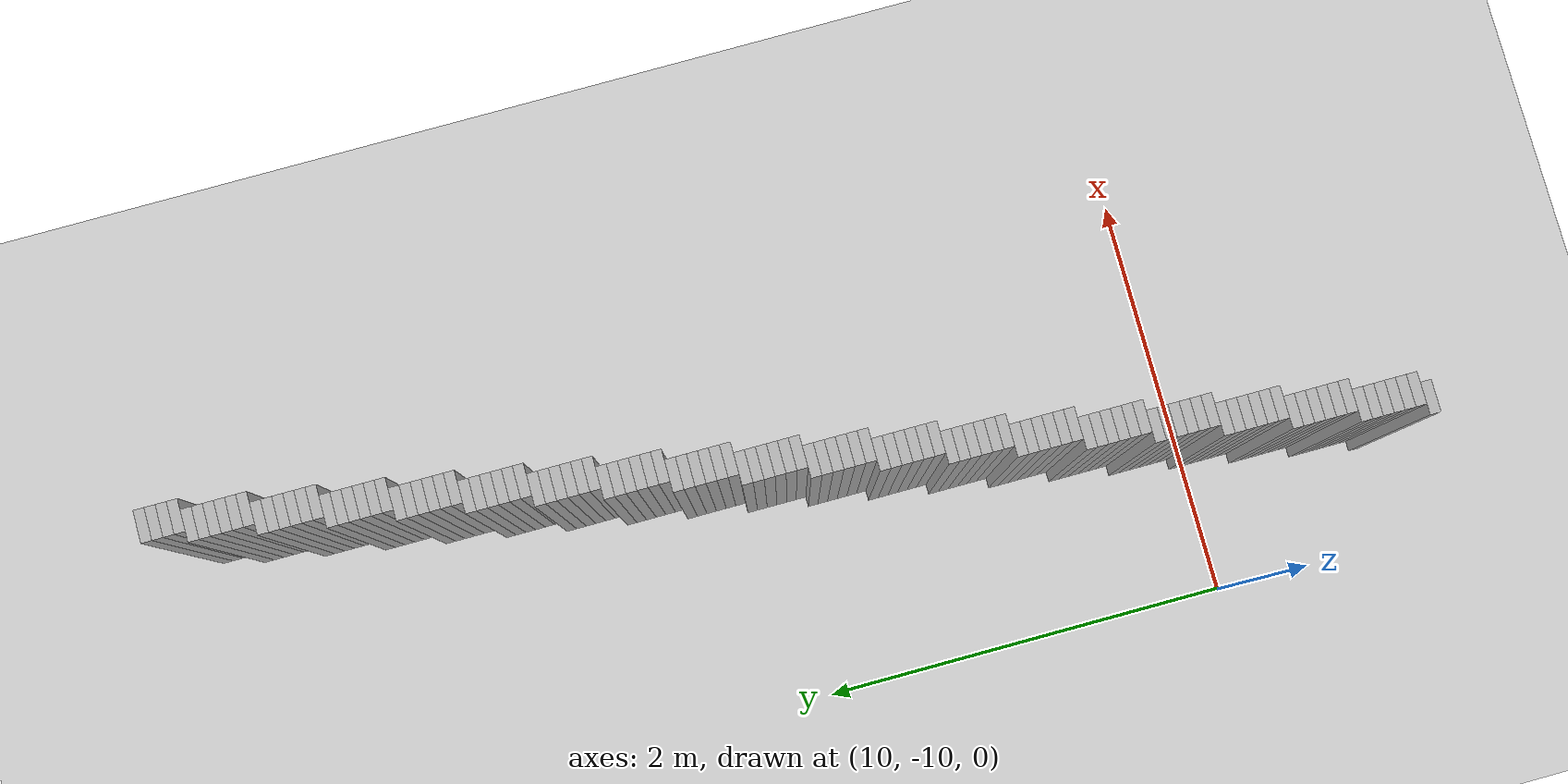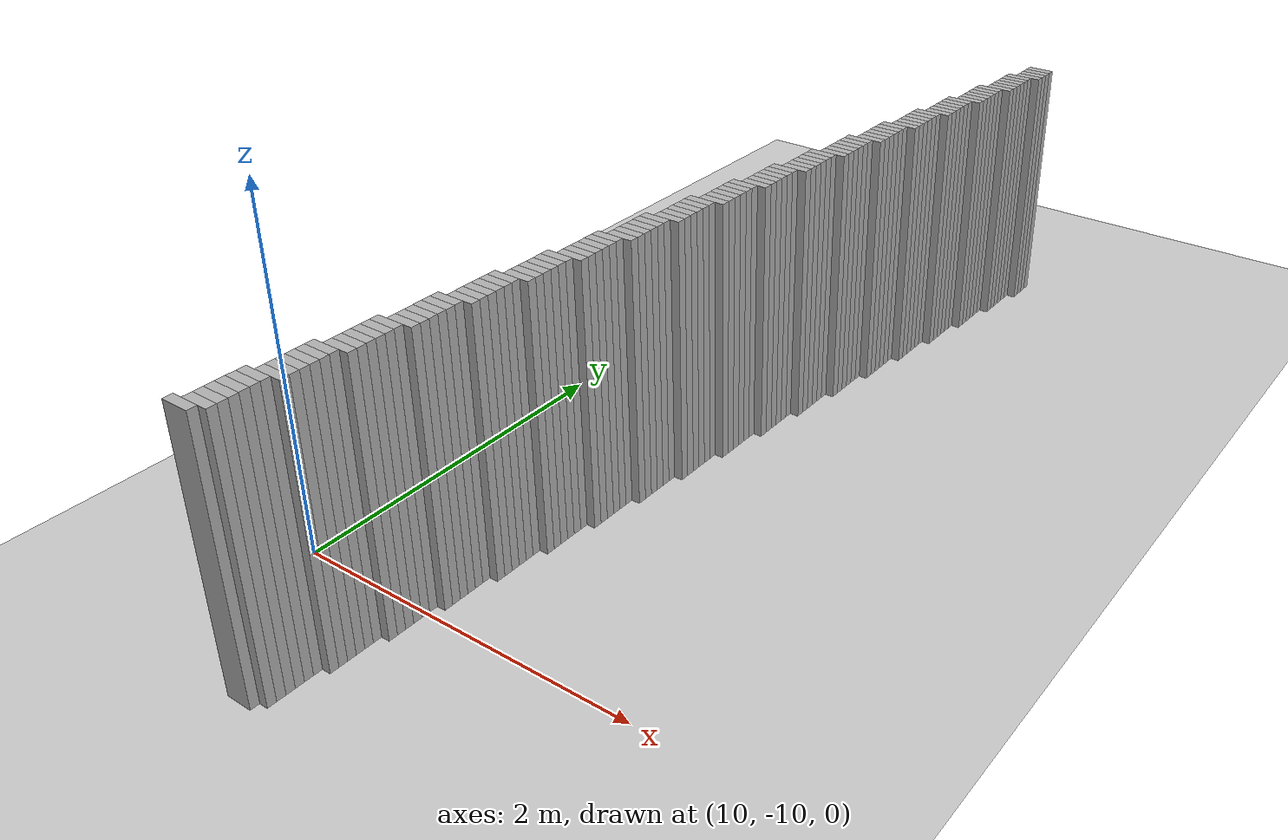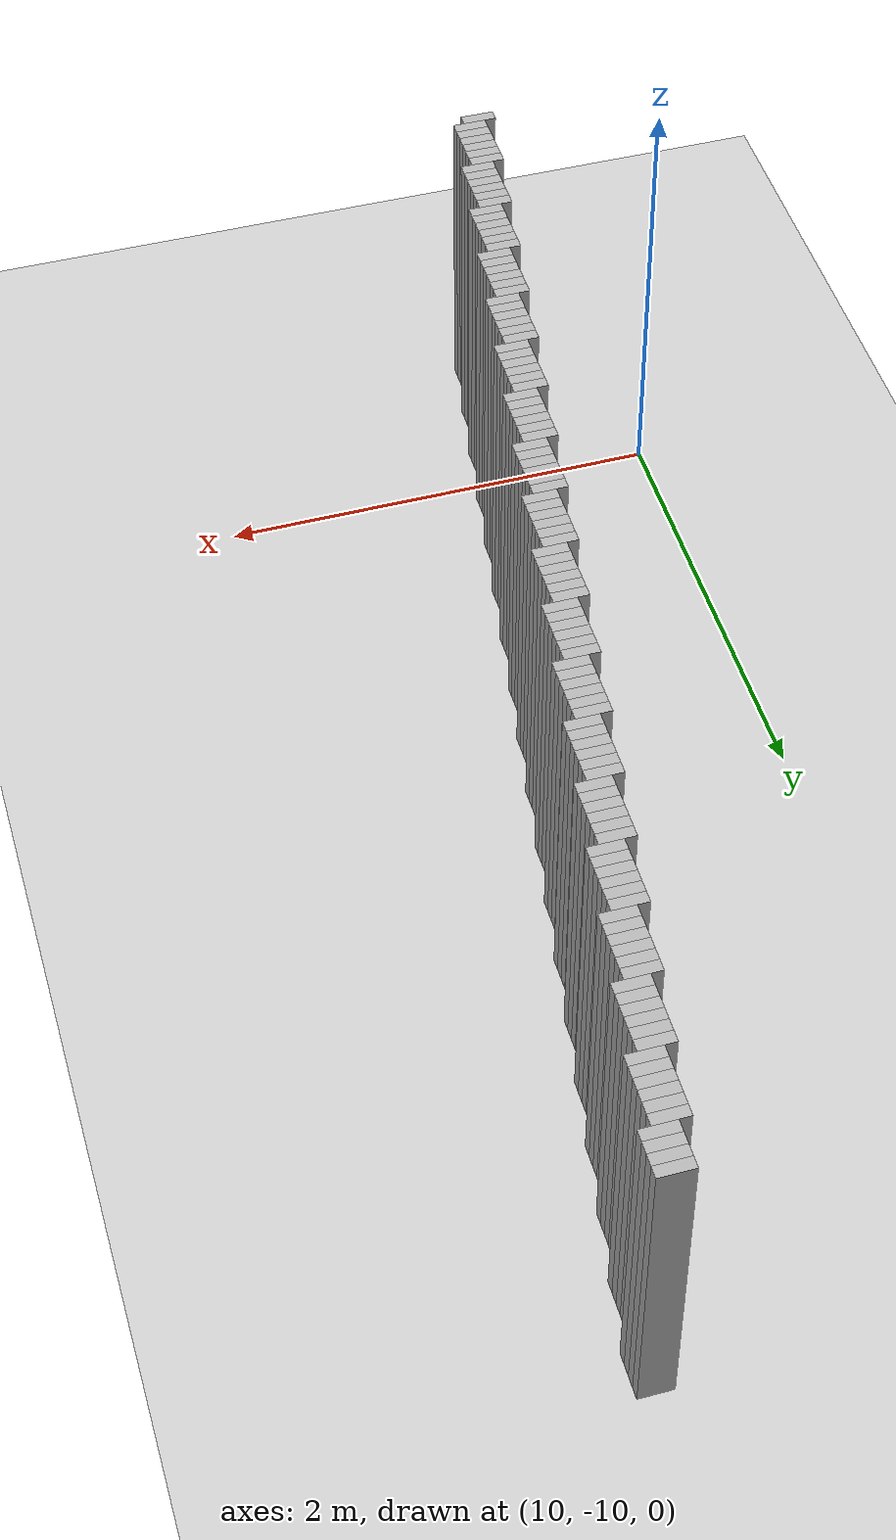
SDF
<sdf version="1.6">
 <world name="df_walled">
  <include><uri>model://sun</uri></include>
  <include><uri>model://ground_plane</uri></include>
  <model name="df_walls">
   <static>true</static>
   <link name="wall_00554">
    <pose>11.5140 -5.2590 0.7500 0 0 0</pose>
    <collision name="col"><geometry><box><size>0.1500 0.0500 1.5000</size></box></geometry></collision>
    <visual name="vis">
     <geometry><box><size>0.1500 0.0500 1.5000</size></box></geometry>
     <material><ambient>0.5 0.5 0.5 1</ambient><diffuse>0.7 0.7 0.7 1</diffuse></material>
    </visual>
   </link>
   <link name="wall_00556">
    <pose>11.5140 -5.3090 0.7500 0 0 0</pose>
    <collision name="col"><geometry><box><size>0.1500 0.0500 1.5000</size></box></geometry></collision>
    <visual name="vis">
     <geometry><box><size>0.1500 0.0500 1.5000</size></box></geometry>
     <material><ambient>0.5 0.5 0.5 1</ambient><diffuse>0.7 0.7 0.7 1</diffuse></material>
    </visual>
   </link>
   <link name="wall_00558">
    <pose>11.5140 -5.3590 0.7500 0 0 0</pose>
    <collision name="col"><geometry><box><size>0.1500 0.0500 1.5000</size></box></geometry></collision>
    <visual name="vis">
     <geometry><box><size>0.1500 0.0500 1.5000</size></box></geometry>
     <material><ambient>0.5 0.5 0.5 1</ambient><diffuse>0.7 0.7 0.7 1</diffuse></material>
    </visual>
   </link>
   <link name="wall_00560">
    <pose>11.5140 -5.4090 0.7500 0 0 0</pose>
    <collision name="col"><geometry><box><size>0.1500 0.0500 1.5000</size></box></geometry></collision>
    <visual name="vis">
     <geometry><box><size>0.1500 0.0500 1.5000</size></box></geometry>
     <material><ambient>0.5 0.5 0.5 1</ambient><diffuse>0.7 0.7 0.7 1</diffuse></material>
    </visual>
   </link>
   <link name="wall_00562">
    <pose>11.4640 -5.4590 0.7500 0 0 0</pose>
    <collision name="col"><geometry><box><size>0.1500 0.0500 1.5000</size></box></geometry></collision>
    <visual name="vis">
     <geometry><box><size>0.1500 0.0500 1.5000</size></box></geometry>
     <material><ambient>0.5 0.5 0.5 1</ambient><diffuse>0.7 0.7 0.7 1</diffuse></material>
    </visual>
   </link>
   <link name="wall_00564">
    <pose>11.4640 -5.5090 0.7500 0 0 0</pose>
    <collision name="col"><geometry><box><size>0.1500 0.0500 1.5000</size></box></geometry></collision>
    <visual name="vis">
     <geometry><box><size>0.1500 0.0500 1.5000</size></box></geometry>
     <material><ambient>0.5 0.5 0.5 1</ambient><diffuse>0.7 0.7 0.7 1</diffuse></material>
    </visual>
   </link>
   <link name="wall_00566">
    <pose>11.4640 -5.5590 0.7500 0 0 0</pose>
    <collision name="col"><geometry><box><size>0.1500 0.0500 1.5000</size></box></geometry></collision>
    <visual name="vis">
     <geometry><box><size>0.1500 0.0500 1.5000</size></box></geometry>
     <material><ambient>0.5 0.5 0.5 1</ambient><diffuse>0.7 0.7 0.7 1</diffuse></material>
    </visual>
   </link>
   <link name="wall_00568">
    <pose>11.4640 -5.6090 0.7500 0 0 0</pose>
    <collision name="col"><geometry><box><size>0.1500 0.0500 1.5000</size></box></geometry></collision>
    <visual name="vis">
     <geometry><box><size>0.1500 0.0500 1.5000</size></box></geometry>
     <material><ambient>0.5 0.5 0.5 1</ambient><diffuse>0.7 0.7 0.7 1</diffuse></material>
    </visual>
   </link>
   <link name="wall_00570">
    <pose>11.4640 -5.6590 0.7500 0 0 0</pose>
    <collision name="col"><geometry><box><size>0.1500 0.0500 1.5000</size></box></geometry></collision>
    <visual name="vis">
     <geometry><box><size>0.1500 0.0500 1.5000</size></box></geometry>
     <material><ambient>0.5 0.5 0.5 1</ambient><diffuse>0.7 0.7 0.7 1</diffuse></material>
    </visual>
   </link>
   <link name="wall_00572">
    <pose>11.4640 -5.7090 0.7500 0 0 0</pose>
    <collision name="col"><geometry><box><size>0.1500 0.0500 1.5000</size></box></geometry></collision>
    <visual name="vis">
     <geometry><box><size>0.1500 0.0500 1.5000</size></box></geometry>
     <material><ambient>0.5 0.5 0.5 1</ambient><diffuse>0.7 0.7 0.7 1</diffuse></material>
    </visual>
   </link>
   <link name="wall_00574">
    <pose>11.4140 -5.7590 0.7500 0 0 0</pose>
    <collision name="col"><geometry><box><size>0.1500 0.0500 1.5000</size></box></geometry></collision>
    <visual name="vis">
     <geometry><box><size>0.1500 0.0500 1.5000</size></box></geometry>
     <material><ambient>0.5 0.5 0.5 1</ambient><diffuse>0.7 0.7 0.7 1</diffuse></material>
    </visual>
   </link>
   <link name="wall_00576">
    <pose>11.4140 -5.8090 0.7500 0 0 0</pose>
    <collision name="col"><geometry><box><size>0.1500 0.0500 1.5000</size></box></geometry></collision>
    <visual name="vis">
     <geometry><box><size>0.1500 0.0500 1.5000</size></box></geometry>
     <material><ambient>0.5 0.5 0.5 1</ambient><diffuse>0.7 0.7 0.7 1</diffuse></material>
    </visual>
   </link>
   <link name="wall_00578">
    <pose>11.4140 -5.8590 0.7500 0 0 0</pose>
    <collision name="col"><geometry><box><size>0.1500 0.0500 1.5000</size></box></geometry></collision>
    <visual name="vis">
     <geometry><box><size>0.1500 0.0500 1.5000</size></box></geometry>
     <material><ambient>0.5 0.5 0.5 1</ambient><diffuse>0.7 0.7 0.7 1</diffuse></material>
    </visual>
   </link>
   <link name="wall_00580">
    <pose>11.4140 -5.9090 0.7500 0 0 0</pose>
    <collision name="col"><geometry><box><size>0.1500 0.0500 1.5000</size></box></geometry></collision>
    <visual name="vis">
     <geometry><box><size>0.1500 0.0500 1.5000</size></box></geometry>
     <material><ambient>0.5 0.5 0.5 1</ambient><diffuse>0.7 0.7 0.7 1</diffuse></material>
    </visual>
   </link>
   <link name="wall_00582">
    <pose>11.4140 -5.9590 0.7500 0 0 0</pose>
    <collision name="col"><geometry><box><size>0.1500 0.0500 1.5000</size></box></geometry></collision>
    <visual name="vis">
     <geometry><box><size>0.1500 0.0500 1.5000</size></box></geometry>
     <material><ambient>0.5 0.5 0.5 1</ambient><diffuse>0.7 0.7 0.7 1</diffuse></material>
    </visual>
   </link>
   <link name="wall_00584">
    <pose>11.4140 -6.0090 0.7500 0 0 0</pose>
    <collision name="col"><geometry><box><size>0.1500 0.0500 1.5000</size></box></geometry></collision>
    <visual name="vis">
     <geometry><box><size>0.1500 0.0500 1.5000</size></box></geometry>
     <material><ambient>0.5 0.5 0.5 1</ambient><diffuse>0.7 0.7 0.7 1</diffuse></material>
    </visual>
   </link>
   <link name="wall_00586">
    <pose>11.3640 -6.0590 0.7500 0 0 0</pose>
    <collision name="col"><geometry><box><size>0.1500 0.0500 1.5000</size></box></geometry></collision>
    <visual name="vis">
     <geometry><box><size>0.1500 0.0500 1.5000</size></box></geometry>
     <material><ambient>0.5 0.5 0.5 1</ambient><diffuse>0.7 0.7 0.7 1</diffuse></material>
    </visual>
   </link>
   <link name="wall_00588">
    <pose>11.3640 -6.1090 0.7500 0 0 0</pose>
    <collision name="col"><geometry><box><size>0.1500 0.0500 1.5000</size></box></geometry></collision>
    <visual name="vis">
     <geometry><box><size>0.1500 0.0500 1.5000</size></box></geometry>
     <material><ambient>0.5 0.5 0.5 1</ambient><diffuse>0.7 0.7 0.7 1</diffuse></material>
    </visual>
   </link>
   <link name="wall_00590">
    <pose>11.3640 -6.1590 0.7500 0 0 0</pose>
    <collision name="col"><geometry><box><size>0.1500 0.0500 1.5000</size></box></geometry></collision>
    <visual name="vis">
     <geometry><box><size>0.1500 0.0500 1.5000</size></box></geometry>
     <material><ambient>0.5 0.5 0.5 1</ambient><diffuse>0.7 0.7 0.7 1</diffuse></material>
    </visual>
   </link>
   <link name="wall_00592">
    <pose>11.3640 -6.2090 0.7500 0 0 0</pose>
    <collision name="col"><geometry><box><size>0.1500 0.0500 1.5000</size></box></geometry></collision>
    <visual name="vis">
     <geometry><box><size>0.1500 0.0500 1.5000</size></box></geometry>
     <material><ambient>0.5 0.5 0.5 1</ambient><diffuse>0.7 0.7 0.7 1</diffuse></material>
    </visual>
   </link>
   <link name="wall_00594">
    <pose>11.3640 -6.2590 0.7500 0 0 0</pose>
    <collision name="col"><geometry><box><size>0.1500 0.0500 1.5000</size></box></geometry></collision>
    <visual name="vis">
     <geometry><box><size>0.1500 0.0500 1.5000</size></box></geometry>
     <material><ambient>0.5 0.5 0.5 1</ambient><diffuse>0.7 0.7 0.7 1</diffuse></material>
    </visual>
   </link>
   <link name="wall_00596">
    <pose>11.3640 -6.3090 0.7500 0 0 0</pose>
    <collision name="col"><geometry><box><size>0.1500 0.0500 1.5000</size></box></geometry></collision>
    <visual name="vis">
     <geometry><box><size>0.1500 0.0500 1.5000</size></box></geometry>
     <material><ambient>0.5 0.5 0.5 1</ambient><diffuse>0.7 0.7 0.7 1</diffuse></material>
    </visual>
   </link>
   <link name="wall_00598">
    <pose>11.3140 -6.3590 0.7500 0 0 0</pose>
    <collision name="col"><geometry><box><size>0.1500 0.0500 1.5000</size></box></geometry></collision>
    <visual name="vis">
     <geometry><box><size>0.1500 0.0500 1.5000</size></box></geometry>
     <material><ambient>0.5 0.5 0.5 1</ambient><diffuse>0.7 0.7 0.7 1</diffuse></material>
    </visual>
   </link>
   <link name="wall_00600">
    <pose>11.3140 -6.4090 0.7500 0 0 0</pose>
    <collision name="col"><geometry><box><size>0.1500 0.0500 1.5000</size></box></geometry></collision>
    <visual name="vis">
     <geometry><box><size>0.1500 0.0500 1.5000</size></box></geometry>
     <material><ambient>0.5 0.5 0.5 1</ambient><diffuse>0.7 0.7 0.7 1</diffuse></material>
    </visual>
   </link>
   <link name="wall_00602">
    <pose>11.3140 -6.4590 0.7500 0 0 0</pose>
    <collision name="col"><geometry><box><size>0.1500 0.0500 1.5000</size></box></geometry></collision>
    <visual name="vis">
     <geometry><box><size>0.1500 0.0500 1.5000</size></box></geometry>
     <material><ambient>0.5 0.5 0.5 1</ambient><diffuse>0.7 0.7 0.7 1</diffuse></material>
    </visual>
   </link>
   <link name="wall_00604">
    <pose>11.3140 -6.5090 0.7500 0 0 0</pose>
    <collision name="col"><geometry><box><size>0.1500 0.0500 1.5000</size></box></geometry></collision>
    <visual name="vis">
     <geometry><box><size>0.1500 0.0500 1.5000</size></box></geometry>
     <material><ambient>0.5 0.5 0.5 1</ambient><diffuse>0.7 0.7 0.7 1</diffuse></material>
    </visual>
   </link>
   <link name="wall_00606">
    <pose>11.3140 -6.5590 0.7500 0 0 0</pose>
    <collision name="col"><geometry><box><size>0.1500 0.0500 1.5000</size></box></geometry></collision>
    <visual name="vis">
     <geometry><box><size>0.1500 0.0500 1.5000</size></box></geometry>
     <material><ambient>0.5 0.5 0.5 1</ambient><diffuse>0.7 0.7 0.7 1</diffuse></material>
    </visual>
   </link>
   <link name="wall_00608">
    <pose>11.3140 -6.6090 0.7500 0 0 0</pose>
    <collision name="col"><geometry><box><size>0.1500 0.0500 1.5000</size></box></geometry></collision>
    <visual name="vis">
     <geometry><box><size>0.1500 0.0500 1.5000</size></box></geometry>
     <material><ambient>0.5 0.5 0.5 1</ambient><diffuse>0.7 0.7 0.7 1</diffuse></material>
    </visual>
   </link>
   <link name="wall_00610">
    <pose>11.2640 -6.6590 0.7500 0 0 0</pose>
    <collision name="col"><geometry><box><size>0.1500 0.0500 1.5000</size></box></geometry></collision>
    <visual name="vis">
     <geometry><box><size>0.1500 0.0500 1.5000</size></box></geometry>
     <material><ambient>0.5 0.5 0.5 1</ambient><diffuse>0.7 0.7 0.7 1</diffuse></material>
    </visual>
   </link>
   <link name="wall_00612">
    <pose>11.2640 -6.7090 0.7500 0 0 0</pose>
    <collision name="col"><geometry><box><size>0.1500 0.0500 1.5000</size></box></geometry></collision>
    <visual name="vis">
     <geometry><box><size>0.1500 0.0500 1.5000</size></box></geometry>
     <material><ambient>0.5 0.5 0.5 1</ambient><diffuse>0.7 0.7 0.7 1</diffuse></material>
    </visual>
   </link>
   <link name="wall_00614">
    <pose>11.2640 -6.7590 0.7500 0 0 0</pose>
    <collision name="col"><geometry><box><size>0.1500 0.0500 1.5000</size></box></geometry></collision>
    <visual name="vis">
     <geometry><box><size>0.1500 0.0500 1.5000</size></box></geometry>
     <material><ambient>0.5 0.5 0.5 1</ambient><diffuse>0.7 0.7 0.7 1</diffuse></material>
    </visual>
   </link>
   <link name="wall_00616">
    <pose>11.2640 -6.8090 0.7500 0 0 0</pose>
    <collision name="col"><geometry><box><size>0.1500 0.0500 1.5000</size></box></geometry></collision>
    <visual name="vis">
     <geometry><box><size>0.1500 0.0500 1.5000</size></box></geometry>
     <material><ambient>0.5 0.5 0.5 1</ambient><diffuse>0.7 0.7 0.7 1</diffuse></material>
    </visual>
   </link>
   <link name="wall_00618">
    <pose>11.2640 -6.8590 0.7500 0 0 0</pose>
    <collision name="col"><geometry><box><size>0.1500 0.0500 1.5000</size></box></geometry></collision>
    <visual name="vis">
     <geometry><box><size>0.1500 0.0500 1.5000</size></box></geometry>
     <material><ambient>0.5 0.5 0.5 1</ambient><diffuse>0.7 0.7 0.7 1</diffuse></material>
    </visual>
   </link>
   <link name="wall_00620">
    <pose>11.2640 -6.9090 0.7500 0 0 0</pose>
    <collision name="col"><geometry><box><size>0.1500 0.0500 1.5000</size></box></geometry></collision>
    <visual name="vis">
     <geometry><box><size>0.1500 0.0500 1.5000</size></box></geometry>
     <material><ambient>0.5 0.5 0.5 1</ambient><diffuse>0.7 0.7 0.7 1</diffuse></material>
    </visual>
   </link>
   <link name="wall_00622">
    <pose>11.2140 -6.9590 0.7500 0 0 0</pose>
    <collision name="col"><geometry><box><size>0.1500 0.0500 1.5000</size></box></geometry></collision>
    <visual name="vis">
     <geometry><box><size>0.1500 0.0500 1.5000</size></box></geometry>
     <material><ambient>0.5 0.5 0.5 1</ambient><diffuse>0.7 0.7 0.7 1</diffuse></material>
    </visual>
   </link>
   <link name="wall_00624">
    <pose>11.2140 -7.0090 0.7500 0 0 0</pose>
    <collision name="col"><geometry><box><size>0.1500 0.0500 1.5000</size></box></geometry></collision>
    <visual name="vis">
     <geometry><box><size>0.1500 0.0500 1.5000</size></box></geometry>
     <material><ambient>0.5 0.5 0.5 1</ambient><diffuse>0.7 0.7 0.7 1</diffuse></material>
    </visual>
   </link>
   <link name="wall_00626">
    <pose>11.2140 -7.0590 0.7500 0 0 0</pose>
    <collision name="col"><geometry><box><size>0.1500 0.0500 1.5000</size></box></geometry></collision>
    <visual name="vis">
     <geometry><box><size>0.1500 0.0500 1.5000</size></box></geometry>
     <material><ambient>0.5 0.5 0.5 1</ambient><diffuse>0.7 0.7 0.7 1</diffuse></material>
    </visual>
   </link>
   <link name="wall_00628">
    <pose>11.2140 -7.1090 0.7500 0 0 0</pose>
    <collision name="col"><geometry><box><size>0.1500 0.0500 1.5000</size></box></geometry></collision>
    <visual name="vis">
     <geometry><box><size>0.1500 0.0500 1.5000</size></box></geometry>
     <material><ambient>0.5 0.5 0.5 1</ambient><diffuse>0.7 0.7 0.7 1</diffuse></material>
    </visual>
   </link>
   <link name="wall_00630">
    <pose>11.2140 -7.1590 0.7500 0 0 0</pose>
    <collision name="col"><geometry><box><size>0.1500 0.0500 1.5000</size></box></geometry></collision>
    <visual name="vis">
     <geometry><box><size>0.1500 0.0500 1.5000</size></box></geometry>
     <material><ambient>0.5 0.5 0.5 1</ambient><diffuse>0.7 0.7 0.7 1</diffuse></material>
    </visual>
   </link>
   <link name="wall_00632">
    <pose>11.2140 -7.2090 0.7500 0 0 0</pose>
    <collision name="col"><geometry><box><size>0.1500 0.0500 1.5000</size></box></geometry></collision>
    <visual name="vis">
     <geometry><box><size>0.1500 0.0500 1.5000</size></box></geometry>
     <material><ambient>0.5 0.5 0.5 1</ambient><diffuse>0.7 0.7 0.7 1</diffuse></material>
    </visual>
   </link>
   <link name="wall_00634">
    <pose>11.1640 -7.2590 0.7500 0 0 0</pose>
    <collision name="col"><geometry><box><size>0.1500 0.0500 1.5000</size></box></geometry></collision>
    <visual name="vis">
     <geometry><box><size>0.1500 0.0500 1.5000</size></box></geometry>
     <material><ambient>0.5 0.5 0.5 1</ambient><diffuse>0.7 0.7 0.7 1</diffuse></material>
    </visual>
   </link>
   <link name="wall_00636">
    <pose>11.1640 -7.3090 0.7500 0 0 0</pose>
    <collision name="col"><geometry><box><size>0.1500 0.0500 1.5000</size></box></geometry></collision>
    <visual name="vis">
     <geometry><box><size>0.1500 0.0500 1.5000</size></box></geometry>
     <material><ambient>0.5 0.5 0.5 1</ambient><diffuse>0.7 0.7 0.7 1</diffuse></material>
    </visual>
   </link>
   <link name="wall_00638">
    <pose>11.1640 -7.3590 0.7500 0 0 0</pose>
    <collision name="col"><geometry><box><size>0.1500 0.0500 1.5000</size></box></geometry></collision>
    <visual name="vis">
     <geometry><box><size>0.1500 0.0500 1.5000</size></box></geometry>
     <material><ambient>0.5 0.5 0.5 1</ambient><diffuse>0.7 0.7 0.7 1</diffuse></material>
    </visual>
   </link>
   <link name="wall_00640">
    <pose>11.1640 -7.4090 0.7500 0 0 0</pose>
    <collision name="col"><geometry><box><size>0.1500 0.0500 1.5000</size></box></geometry></collision>
    <visual name="vis">
     <geometry><box><size>0.1500 0.0500 1.5000</size></box></geometry>
     <material><ambient>0.5 0.5 0.5 1</ambient><diffuse>0.7 0.7 0.7 1</diffuse></material>
    </visual>
   </link>
   <link name="wall_00642">
    <pose>11.1640 -7.4590 0.7500 0 0 0</pose>
    <collision name="col"><geometry><box><size>0.1500 0.0500 1.5000</size></box></geometry></collision>
    <visual name="vis">
     <geometry><box><size>0.1500 0.0500 1.5000</size></box></geometry>
     <material><ambient>0.5 0.5 0.5 1</ambient><diffuse>0.7 0.7 0.7 1</diffuse></material>
    </visual>
   </link>
   <link name="wall_00644">
    <pose>11.1640 -7.5090 0.7500 0 0 0</pose>
    <collision name="col"><geometry><box><size>0.1500 0.0500 1.5000</size></box></geometry></collision>
    <visual name="vis">
     <geometry><box><size>0.1500 0.0500 1.5000</size></box></geometry>
     <material><ambient>0.5 0.5 0.5 1</ambient><diffuse>0.7 0.7 0.7 1</diffuse></material>
    </visual>
   </link>
   <link name="wall_00646">
    <pose>11.1140 -7.5590 0.7500 0 0 0</pose>
    <collision name="col"><geometry><box><size>0.1500 0.0500 1.5000</size></box></geometry></collision>
    <visual name="vis">
     <geometry><box><size>0.1500 0.0500 1.5000</size></box></geometry>
     <material><ambient>0.5 0.5 0.5 1</ambient><diffuse>0.7 0.7 0.7 1</diffuse></material>
    </visual>
   </link>
   <link name="wall_00648">
    <pose>11.1140 -7.6090 0.7500 0 0 0</pose>
    <collision name="col"><geometry><box><size>0.1500 0.0500 1.5000</size></box></geometry></collision>
    <visual name="vis">
     <geometry><box><size>0.1500 0.0500 1.5000</size></box></geometry>
     <material><ambient>0.5 0.5 0.5 1</ambient><diffuse>0.7 0.7 0.7 1</diffuse></material>
    </visual>
   </link>
   <link name="wall_00650">
    <pose>11.1140 -7.6590 0.7500 0 0 0</pose>
    <collision name="col"><geometry><box><size>0.1500 0.0500 1.5000</size></box></geometry></collision>
    <visual name="vis">
     <geometry><box><size>0.1500 0.0500 1.5000</size></box></geometry>
     <material><ambient>0.5 0.5 0.5 1</ambient><diffuse>0.7 0.7 0.7 1</diffuse></material>
    </visual>
   </link>
   <link name="wall_00652">
    <pose>11.1140 -7.7090 0.7500 0 0 0</pose>
    <collision name="col"><geometry><box><size>0.1500 0.0500 1.5000</size></box></geometry></collision>
    <visual name="vis">
     <geometry><box><size>0.1500 0.0500 1.5000</size></box></geometry>
     <material><ambient>0.5 0.5 0.5 1</ambient><diffuse>0.7 0.7 0.7 1</diffuse></material>
    </visual>
   </link>
   <link name="wall_00654">
    <pose>11.1140 -7.7590 0.7500 0 0 0</pose>
    <collision name="col"><geometry><box><size>0.1500 0.0500 1.5000</size></box></geometry></collision>
    <visual name="vis">
     <geometry><box><size>0.1500 0.0500 1.5000</size></box></geometry>
     <material><ambient>0.5 0.5 0.5 1</ambient><diffuse>0.7 0.7 0.7 1</diffuse></material>
    </visual>
   </link>
   <link name="wall_00656">
    <pose>11.1140 -7.8090 0.7500 0 0 0</pose>
    <collision name="col"><geometry><box><size>0.1500 0.0500 1.5000</size></box></geometry></collision>
    <visual name="vis">
     <geometry><box><size>0.1500 0.0500 1.5000</size></box></geometry>
     <material><ambient>0.5 0.5 0.5 1</ambient><diffuse>0.7 0.7 0.7 1</diffuse></material>
    </visual>
   </link>
   <link name="wall_00658">
    <pose>11.0640 -7.8590 0.7500 0 0 0</pose>
    <collision name="col"><geometry><box><size>0.1500 0.0500 1.5000</size></box></geometry></collision>
    <visual name="vis">
     <geometry><box><size>0.1500 0.0500 1.5000</size></box></geometry>
     <material><ambient>0.5 0.5 0.5 1</ambient><diffuse>0.7 0.7 0.7 1</diffuse></material>
    </visual>
   </link>
   <link name="wall_00660">
    <pose>11.0640 -7.9090 0.7500 0 0 0</pose>
    <collision name="col"><geometry><box><size>0.1500 0.0500 1.5000</size></box></geometry></collision>
    <visual name="vis">
     <geometry><box><size>0.1500 0.0500 1.5000</size></box></geometry>
     <material><ambient>0.5 0.5 0.5 1</ambient><diffuse>0.7 0.7 0.7 1</diffuse></material>
    </visual>
   </link>
   <link name="wall_00662">
    <pose>11.0640 -7.9590 0.7500 0 0 0</pose>
    <collision name="col"><geometry><box><size>0.1500 0.0500 1.5000</size></box></geometry></collision>
    <visual name="vis">
     <geometry><box><size>0.1500 0.0500 1.5000</size></box></geometry>
     <material><ambient>0.5 0.5 0.5 1</ambient><diffuse>0.7 0.7 0.7 1</diffuse></material>
    </visual>
   </link>
   <link name="wall_00665">
    <pose>11.0640 -8.0090 0.7500 0 0 0</pose>
    <collision name="col"><geometry><box><size>0.1500 0.0500 1.5000</size></box></geometry></collision>
    <visual name="vis">
     <geometry><box><size>0.1500 0.0500 1.5000</size></box></geometry>
     <material><ambient>0.5 0.5 0.5 1</ambient><diffuse>0.7 0.7 0.7 1</diffuse></material>
    </visual>
   </link>
   <link name="wall_00668">
    <pose>11.0640 -8.0590 0.7500 0 0 0</pose>
    <collision name="col"><geometry><box><size>0.1500 0.0500 1.5000</size></box></geometry></collision>
    <visual name="vis">
     <geometry><box><size>0.1500 0.0500 1.5000</size></box></geometry>
     <material><ambient>0.5 0.5 0.5 1</ambient><diffuse>0.7 0.7 0.7 1</diffuse></material>
    </visual>
   </link>
   <link name="wall_00671">
    <pose>11.0640 -8.1090 0.7500 0 0 0</pose>
    <collision name="col"><geometry><box><size>0.1500 0.0500 1.5000</size></box></geometry></collision>
    <visual name="vis">
     <geometry><box><size>0.1500 0.0500 1.5000</size></box></geometry>
     <material><ambient>0.5 0.5 0.5 1</ambient><diffuse>0.7 0.7 0.7 1</diffuse></material>
    </visual>
   </link>
   <link name="wall_00674">
    <pose>11.0140 -8.1590 0.7500 0 0 0</pose>
    <collision name="col"><geometry><box><size>0.1500 0.0500 1.5000</size></box></geometry></collision>
    <visual name="vis">
     <geometry><box><size>0.1500 0.0500 1.5000</size></box></geometry>
     <material><ambient>0.5 0.5 0.5 1</ambient><diffuse>0.7 0.7 0.7 1</diffuse></material>
    </visual>
   </link>
   <link name="wall_00677">
    <pose>11.0140 -8.2090 0.7500 0 0 0</pose>
    <collision name="col"><geometry><box><size>0.1500 0.0500 1.5000</size></box></geometry></collision>
    <visual name="vis">
     <geometry><box><size>0.1500 0.0500 1.5000</size></box></geometry>
     <material><ambient>0.5 0.5 0.5 1</ambient><diffuse>0.7 0.7 0.7 1</diffuse></material>
    </visual>
   </link>
   <link name="wall_00680">
    <pose>11.0140 -8.2590 0.7500 0 0 0</pose>
    <collision name="col"><geometry><box><size>0.1500 0.0500 1.5000</size></box></geometry></collision>
    <visual name="vis">
     <geometry><box><size>0.1500 0.0500 1.5000</size></box></geometry>
     <material><ambient>0.5 0.5 0.5 1</ambient><diffuse>0.7 0.7 0.7 1</diffuse></material>
    </visual>
   </link>
   <link name="wall_00683">
    <pose>11.0140 -8.3090 0.7500 0 0 0</pose>
    <collision name="col"><geometry><box><size>0.1500 0.0500 1.5000</size></box></geometry></collision>
    <visual name="vis">
     <geometry><box><size>0.1500 0.0500 1.5000</size></box></geometry>
     <material><ambient>0.5 0.5 0.5 1</ambient><diffuse>0.7 0.7 0.7 1</diffuse></material>
    </visual>
   </link>
   <link name="wall_00686">
    <pose>11.0140 -8.3590 0.7500 0 0 0</pose>
    <collision name="col"><geometry><box><size>0.1500 0.0500 1.5000</size></box></geometry></collision>
    <visual name="vis">
     <geometry><box><size>0.1500 0.0500 1.5000</size></box></geometry>
     <material><ambient>0.5 0.5 0.5 1</ambient><diffuse>0.7 0.7 0.7 1</diffuse></material>
    </visual>
   </link>
   <link name="wall_00689">
    <pose>11.0140 -8.4090 0.7500 0 0 0</pose>
    <collision name="col"><geometry><box><size>0.1500 0.0500 1.5000</size></box></geometry></collision>
    <visual name="vis">
     <geometry><box><size>0.1500 0.0500 1.5000</size></box></geometry>
     <material><ambient>0.5 0.5 0.5 1</ambient><diffuse>0.7 0.7 0.7 1</diffuse></material>
    </visual>
   </link>
   <link name="wall_00692">
    <pose>10.9640 -8.4590 0.7500 0 0 0</pose>
    <collision name="col"><geometry><box><size>0.1500 0.0500 1.5000</size></box></geometry></collision>
    <visual name="vis">
     <geometry><box><size>0.1500 0.0500 1.5000</size></box></geometry>
     <material><ambient>0.5 0.5 0.5 1</ambient><diffuse>0.7 0.7 0.7 1</diffuse></material>
    </visual>
   </link>
   <link name="wall_00695">
    <pose>10.9640 -8.5090 0.7500 0 0 0</pose>
    <collision name="col"><geometry><box><size>0.1500 0.0500 1.5000</size></box></geometry></collision>
    <visual name="vis">
     <geometry><box><size>0.1500 0.0500 1.5000</size></box></geometry>
     <material><ambient>0.5 0.5 0.5 1</ambient><diffuse>0.7 0.7 0.7 1</diffuse></material>
    </visual>
   </link>
   <link name="wall_00698">
    <pose>10.9640 -8.5590 0.7500 0 0 0</pose>
    <collision name="col"><geometry><box><size>0.1500 0.0500 1.5000</size></box></geometry></collision>
    <visual name="vis">
     <geometry><box><size>0.1500 0.0500 1.5000</size></box></geometry>
     <material><ambient>0.5 0.5 0.5 1</ambient><diffuse>0.7 0.7 0.7 1</diffuse></material>
    </visual>
   </link>
   <link name="wall_00701">
    <pose>10.9640 -8.6090 0.7500 0 0 0</pose>
    <collision name="col"><geometry><box><size>0.1500 0.0500 1.5000</size></box></geometry></collision>
    <visual name="vis">
     <geometry><box><size>0.1500 0.0500 1.5000</size></box></geometry>
     <material><ambient>0.5 0.5 0.5 1</ambient><diffuse>0.7 0.7 0.7 1</diffuse></material>
    </visual>
   </link>
   <link name="wall_00704">
    <pose>10.9640 -8.6590 0.7500 0 0 0</pose>
    <collision name="col"><geometry><box><size>0.1500 0.0500 1.5000</size></box></geometry></collision>
    <visual name="vis">
     <geometry><box><size>0.1500 0.0500 1.5000</size></box></geometry>
     <material><ambient>0.5 0.5 0.5 1</ambient><diffuse>0.7 0.7 0.7 1</diffuse></material>
    </visual>
   </link>
   <link name="wall_00707">
    <pose>10.9640 -8.7090 0.7500 0 0 0</pose>
    <collision name="col"><geometry><box><size>0.1500 0.0500 1.5000</size></box></geometry></collision>
    <visual name="vis">
     <geometry><box><size>0.1500 0.0500 1.5000</size></box></geometry>
     <material><ambient>0.5 0.5 0.5 1</ambient><diffuse>0.7 0.7 0.7 1</diffuse></material>
    </visual>
   </link>
   <link name="wall_00710">
    <pose>10.9140 -8.7590 0.7500 0 0 0</pose>
    <collision name="col"><geometry><box><size>0.1500 0.0500 1.5000</size></box></geometry></collision>
    <visual name="vis">
     <geometry><box><size>0.1500 0.0500 1.5000</size></box></geometry>
     <material><ambient>0.5 0.5 0.5 1</ambient><diffuse>0.7 0.7 0.7 1</diffuse></material>
    </visual>
   </link>
   <link name="wall_00713">
    <pose>10.9140 -8.8090 0.7500 0 0 0</pose>
    <collision name="col"><geometry><box><size>0.1500 0.0500 1.5000</size></box></geometry></collision>
    <visual name="vis">
     <geometry><box><size>0.1500 0.0500 1.5000</size></box></geometry>
     <material><ambient>0.5 0.5 0.5 1</ambient><diffuse>0.7 0.7 0.7 1</diffuse></material>
    </visual>
   </link>
   <link name="wall_00716">
    <pose>10.9140 -8.8590 0.7500 0 0 0</pose>
    <collision name="col"><geometry><box><size>0.1500 0.0500 1.5000</size></box></geometry></collision>
    <visual name="vis">
     <geometry><box><size>0.1500 0.0500 1.5000</size></box></geometry>
     <material><ambient>0.5 0.5 0.5 1</ambient><diffuse>0.7 0.7 0.7 1</diffuse></material>
    </visual>
   </link>
   <link name="wall_00719">
    <pose>10.9140 -8.9090 0.7500 0 0 0</pose>
    <collision name="col"><geometry><box><size>0.1500 0.0500 1.5000</size></box></geometry></collision>
    <visual name="vis">
     <geometry><box><size>0.1500 0.0500 1.5000</size></box></geometry>
     <material><ambient>0.5 0.5 0.5 1</ambient><diffuse>0.7 0.7 0.7 1</diffuse></material>
    </visual>
   </link>
   <link name="wall_00722">
    <pose>10.9140 -8.9590 0.7500 0 0 0</pose>
    <collision name="col"><geometry><box><size>0.1500 0.0500 1.5000</size></box></geometry></collision>
    <visual name="vis">
     <geometry><box><size>0.1500 0.0500 1.5000</size></box></geometry>
     <material><ambient>0.5 0.5 0.5 1</ambient><diffuse>0.7 0.7 0.7 1</diffuse></material>
    </visual>
   </link>
   <link name="wall_00725">
    <pose>10.9140 -9.0090 0.7500 0 0 0</pose>
    <collision name="col"><geometry><box><size>0.1500 0.0500 1.5000</size></box></geometry></collision>
    <visual name="vis">
     <geometry><box><size>0.1500 0.0500 1.5000</size></box></geometry>
     <material><ambient>0.5 0.5 0.5 1</ambient><diffuse>0.7 0.7 0.7 1</diffuse></material>
    </visual>
   </link>
   <link name="wall_00728">
    <pose>10.8640 -9.0590 0.7500 0 0 0</pose>
    <collision name="col"><geometry><box><size>0.1500 0.0500 1.5000</size></box></geometry></collision>
    <visual name="vis">
     <geometry><box><size>0.1500 0.0500 1.5000</size></box></geometry>
     <material><ambient>0.5 0.5 0.5 1</ambient><diffuse>0.7 0.7 0.7 1</diffuse></material>
    </visual>
   </link>
   <link name="wall_00731">
    <pose>10.8640 -9.1090 0.7500 0 0 0</pose>
    <collision name="col"><geometry><box><size>0.1500 0.0500 1.5000</size></box></geometry></collision>
    <visual name="vis">
     <geometry><box><size>0.1500 0.0500 1.5000</size></box></geometry>
     <material><ambient>0.5 0.5 0.5 1</ambient><diffuse>0.7 0.7 0.7 1</diffuse></material>
    </visual>
   </link>
   <link name="wall_00734">
    <pose>10.8640 -9.1590 0.7500 0 0 0</pose>
    <collision name="col"><geometry><box><size>0.1500 0.0500 1.5000</size></box></geometry></collision>
    <visual name="vis">
     <geometry><box><size>0.1500 0.0500 1.5000</size></box></geometry>
     <material><ambient>0.5 0.5 0.5 1</ambient><diffuse>0.7 0.7 0.7 1</diffuse></material>
    </visual>
   </link>
   <link name="wall_00737">
    <pose>10.8640 -9.2090 0.7500 0 0 0</pose>
    <collision name="col"><geometry><box><size>0.1500 0.0500 1.5000</size></box></geometry></collision>
    <visual name="vis">
     <geometry><box><size>0.1500 0.0500 1.5000</size></box></geometry>
     <material><ambient>0.5 0.5 0.5 1</ambient><diffuse>0.7 0.7 0.7 1</diffuse></material>
    </visual>
   </link>
   <link name="wall_00740">
    <pose>10.8640 -9.2590 0.7500 0 0 0</pose>
    <collision name="col"><geometry><box><size>0.1500 0.0500 1.5000</size></box></geometry></collision>
    <visual name="vis">
     <geometry><box><size>0.1500 0.0500 1.5000</size></box></geometry>
     <material><ambient>0.5 0.5 0.5 1</ambient><diffuse>0.7 0.7 0.7 1</diffuse></material>
    </visual>
   </link>
   <link name="wall_00743">
    <pose>10.8640 -9.3090 0.7500 0 0 0</pose>
    <collision name="col"><geometry><box><size>0.1500 0.0500 1.5000</size></box></geometry></collision>
    <visual name="vis">
     <geometry><box><size>0.1500 0.0500 1.5000</size></box></geometry>
     <material><ambient>0.5 0.5 0.5 1</ambient><diffuse>0.7 0.7 0.7 1</diffuse></material>
    </visual>
   </link>
   <link name="wall_00746">
    <pose>10.8140 -9.3590 0.7500 0 0 0</pose>
    <collision name="col"><geometry><box><size>0.1500 0.0500 1.5000</size></box></geometry></collision>
    <visual name="vis">
     <geometry><box><size>0.1500 0.0500 1.5000</size></box></geometry>
     <material><ambient>0.5 0.5 0.5 1</ambient><diffuse>0.7 0.7 0.7 1</diffuse></material>
    </visual>
   </link>
   <link name="wall_00749">
    <pose>10.8140 -9.4090 0.7500 0 0 0</pose>
    <collision name="col"><geometry><box><size>0.1500 0.0500 1.5000</size></box></geometry></collision>
    <visual name="vis">
     <geometry><box><size>0.1500 0.0500 1.5000</size></box></geometry>
     <material><ambient>0.5 0.5 0.5 1</ambient><diffuse>0.7 0.7 0.7 1</diffuse></material>
    </visual>
   </link>
   <link name="wall_00752">
    <pose>10.8140 -9.4590 0.7500 0 0 0</pose>
    <collision name="col"><geometry><box><size>0.1500 0.0500 1.5000</size></box></geometry></collision>
    <visual name="vis">
     <geometry><box><size>0.1500 0.0500 1.5000</size></box></geometry>
     <material><ambient>0.5 0.5 0.5 1</ambient><diffuse>0.7 0.7 0.7 1</diffuse></material>
    </visual>
   </link>
   <link name="wall_00755">
    <pose>10.8140 -9.5090 0.7500 0 0 0</pose>
    <collision name="col"><geometry><box><size>0.1500 0.0500 1.5000</size></box></geometry></collision>
    <visual name="vis">
     <geometry><box><size>0.1500 0.0500 1.5000</size></box></geometry>
     <material><ambient>0.5 0.5 0.5 1</ambient><diffuse>0.7 0.7 0.7 1</diffuse></material>
    </visual>
   </link>
   <link name="wall_00758">
    <pose>10.8140 -9.5590 0.7500 0 0 0</pose>
    <collision name="col"><geometry><box><size>0.1500 0.0500 1.5000</size></box></geometry></collision>
    <visual name="vis">
     <geometry><box><size>0.1500 0.0500 1.5000</size></box></geometry>
     <material><ambient>0.5 0.5 0.5 1</ambient><diffuse>0.7 0.7 0.7 1</diffuse></material>
    </visual>
   </link>
   <link name="wall_00761">
    <pose>10.8140 -9.6090 0.7500 0 0 0</pose>
    <collision name="col"><geometry><box><size>0.1500 0.0500 1.5000</size></box></geometry></collision>
    <visual name="vis">
     <geometry><box><size>0.1500 0.0500 1.5000</size></box></geometry>
     <material><ambient>0.5 0.5 0.5 1</ambient><diffuse>0.7 0.7 0.7 1</diffuse></material>
    </visual>
   </link>
   <link name="wall_00764">
    <pose>10.7640 -9.6590 0.7500 0 0 0</pose>
    <collision name="col"><geometry><box><size>0.1500 0.0500 1.5000</size></box></geometry></collision>
    <visual name="vis">
     <geometry><box><size>0.1500 0.0500 1.5000</size></box></geometry>
     <material><ambient>0.5 0.5 0.5 1</ambient><diffuse>0.7 0.7 0.7 1</diffuse></material>
    </visual>
   </link>
   <link name="wall_00767">
    <pose>10.7640 -9.7090 0.7500 0 0 0</pose>
    <collision name="col"><geometry><box><size>0.1500 0.0500 1.5000</size></box></geometry></collision>
    <visual name="vis">
     <geometry><box><size>0.1500 0.0500 1.5000</size></box></geometry>
     <material><ambient>0.5 0.5 0.5 1</ambient><diffuse>0.7 0.7 0.7 1</diffuse></material>
    </visual>
   </link>
   <link name="wall_00770">
    <pose>10.7640 -9.7590 0.7500 0 0 0</pose>
    <collision name="col"><geometry><box><size>0.1500 0.0500 1.5000</size></box></geometry></collision>
    <visual name="vis">
     <geometry><box><size>0.1500 0.0500 1.5000</size></box></geometry>
     <material><ambient>0.5 0.5 0.5 1</ambient><diffuse>0.7 0.7 0.7 1</diffuse></material>
    </visual>
   </link>
   <link name="wall_00773">
    <pose>10.7640 -9.8090 0.7500 0 0 0</pose>
    <collision name="col"><geometry><box><size>0.1500 0.0500 1.5000</size></box></geometry></collision>
    <visual name="vis">
     <geometry><box><size>0.1500 0.0500 1.5000</size></box></geometry>
     <material><ambient>0.5 0.5 0.5 1</ambient><diffuse>0.7 0.7 0.7 1</diffuse></material>
    </visual>
   </link>
   <link name="wall_00776">
    <pose>10.7640 -9.8590 0.7500 0 0 0</pose>
    <collision name="col"><geometry><box><size>0.1500 0.0500 1.5000</size></box></geometry></collision>
    <visual name="vis">
     <geometry><box><size>0.1500 0.0500 1.5000</size></box></geometry>
     <material><ambient>0.5 0.5 0.5 1</ambient><diffuse>0.7 0.7 0.7 1</diffuse></material>
    </visual>
   </link>
   <link name="wall_00779">
    <pose>10.7640 -9.9090 0.7500 0 0 0</pose>
    <collision name="col"><geometry><box><size>0.1500 0.0500 1.5000</size></box></geometry></collision>
    <visual name="vis">
     <geometry><box><size>0.1500 0.0500 1.5000</size></box></geometry>
     <material><ambient>0.5 0.5 0.5 1</ambient><diffuse>0.7 0.7 0.7 1</diffuse></material>
    </visual>
   </link>
   <link name="wall_00782">
    <pose>10.7140 -9.9590 0.7500 0 0 0</pose>
    <collision name="col"><geometry><box><size>0.1500 0.0500 1.5000</size></box></geometry></collision>
    <visual name="vis">
     <geometry><box><size>0.1500 0.0500 1.5000</size></box></geometry>
     <material><ambient>0.5 0.5 0.5 1</ambient><diffuse>0.7 0.7 0.7 1</diffuse></material>
    </visual>
   </link>
   <link name="wall_00785">
    <pose>10.7140 -10.0090 0.7500 0 0 0</pose>
    <collision name="col"><geometry><box><size>0.1500 0.0500 1.5000</size></box></geometry></collision>
    <visual name="vis">
     <geometry><box><size>0.1500 0.0500 1.5000</size></box></geometry>
     <material><ambient>0.5 0.5 0.5 1</ambient><diffuse>0.7 0.7 0.7 1</diffuse></material>
    </visual>
   </link>
   <link name="wall_00788">
    <pose>10.7140 -10.0590 0.7500 0 0 0</pose>
    <collision name="col"><geometry><box><size>0.1500 0.0500 1.5000</size></box></geometry></collision>
    <visual name="vis">
     <geometry><box><size>0.1500 0.0500 1.5000</size></box></geometry>
     <material><ambient>0.5 0.5 0.5 1</ambient><diffuse>0.7 0.7 0.7 1</diffuse></material>
    </visual>
   </link>
   <link name="wall_00791">
    <pose>10.7140 -10.1090 0.7500 0 0 0</pose>
    <collision name="col"><geometry><box><size>0.1500 0.0500 1.5000</size></box></geometry></collision>
    <visual name="vis">
     <geometry><box><size>0.1500 0.0500 1.5000</size></box></geometry>
     <material><ambient>0.5 0.5 0.5 1</ambient><diffuse>0.7 0.7 0.7 1</diffuse></material>
    </visual>
   </link>
   <link name="wall_00794">
    <pose>10.7140 -10.1590 0.7500 0 0 0</pose>
    <collision name="col"><geometry><box><size>0.1500 0.0500 1.5000</size></box></geometry></collision>
    <visual name="vis">
     <geometry><box><size>0.1500 0.0500 1.5000</size></box></geometry>
     <material><ambient>0.5 0.5 0.5 1</ambient><diffuse>0.7 0.7 0.7 1</diffuse></material>
    </visual>
   </link>
   <link name="wall_00797">
    <pose>10.7140 -10.2090 0.7500 0 0 0</pose>
    <collision name="col"><geometry><box><size>0.1500 0.0500 1.5000</size></box></geometry></collision>
    <visual name="vis">
     <geometry><box><size>0.1500 0.0500 1.5000</size></box></geometry>
     <material><ambient>0.5 0.5 0.5 1</ambient><diffuse>0.7 0.7 0.7 1</diffuse></material>
    </visual>
   </link>
   <link name="wall_00800">
    <pose>10.6640 -10.2590 0.7500 0 0 0</pose>
    <collision name="col"><geometry><box><size>0.1500 0.0500 1.5000</size></box></geometry></collision>
    <visual name="vis">
     <geometry><box><size>0.1500 0.0500 1.5000</size></box></geometry>
     <material><ambient>0.5 0.5 0.5 1</ambient><diffuse>0.7 0.7 0.7 1</diffuse></material>
    </visual>
   </link>
   <link name="wall_00803">
    <pose>10.6640 -10.3090 0.7500 0 0 0</pose>
    <collision name="col"><geometry><box><size>0.1500 0.0500 1.5000</size></box></geometry></collision>
    <visual name="vis">
     <geometry><box><size>0.1500 0.0500 1.5000</size></box></geometry>
     <material><ambient>0.5 0.5 0.5 1</ambient><diffuse>0.7 0.7 0.7 1</diffuse></material>
    </visual>
   </link>
   <link name="wall_00806">
    <pose>10.6640 -10.3590 0.7500 0 0 0</pose>
    <collision name="col"><geometry><box><size>0.1500 0.0500 1.5000</size></box></geometry></collision>
    <visual name="vis">
     <geometry><box><size>0.1500 0.0500 1.5000</size></box></geometry>
     <material><ambient>0.5 0.5 0.5 1</ambient><diffuse>0.7 0.7 0.7 1</diffuse></material>
    </visual>
   </link>
   <link name="wall_00809">
    <pose>10.6640 -10.4090 0.7500 0 0 0</pose>
    <collision name="col"><geometry><box><size>0.1500 0.0500 1.5000</size></box></geometry></collision>
    <visual name="vis">
     <geometry><box><size>0.1500 0.0500 1.5000</size></box></geometry>
     <material><ambient>0.5 0.5 0.5 1</ambient><diffuse>0.7 0.7 0.7 1</diffuse></material>
    </visual>
   </link>
   <link name="wall_00812">
    <pose>10.6640 -10.4590 0.7500 0 0 0</pose>
    <collision name="col"><geometry><box><size>0.1500 0.0500 1.5000</size></box></geometry></collision>
    <visual name="vis">
     <geometry><box><size>0.1500 0.0500 1.5000</size></box></geometry>
     <material><ambient>0.5 0.5 0.5 1</ambient><diffuse>0.7 0.7 0.7 1</diffuse></material>
    </visual>
   </link>
   <link name="wall_00815">
    <pose>10.6640 -10.5090 0.7500 0 0 0</pose>
    <collision name="col"><geometry><box><size>0.1500 0.0500 1.5000</size></box></geometry></collision>
    <visual name="vis">
     <geometry><box><size>0.1500 0.0500 1.5000</size></box></geometry>
     <material><ambient>0.5 0.5 0.5 1</ambient><diffuse>0.7 0.7 0.7 1</diffuse></material>
    </visual>
   </link>
   <link name="wall_00818">
    <pose>10.6140 -10.5590 0.7500 0 0 0</pose>
    <collision name="col"><geometry><box><size>0.1500 0.0500 1.5000</size></box></geometry></collision>
    <visual name="vis">
     <geometry><box><size>0.1500 0.0500 1.5000</size></box></geometry>
     <material><ambient>0.5 0.5 0.5 1</ambient><diffuse>0.7 0.7 0.7 1</diffuse></material>
    </visual>
   </link>
   <link name="wall_00821">
    <pose>10.6140 -10.6090 0.7500 0 0 0</pose>
    <collision name="col"><geometry><box><size>0.1500 0.0500 1.5000</size></box></geometry></collision>
    <visual name="vis">
     <geometry><box><size>0.1500 0.0500 1.5000</size></box></geometry>
     <material><ambient>0.5 0.5 0.5 1</ambient><diffuse>0.7 0.7 0.7 1</diffuse></material>
    </visual>
   </link>
   <link name="wall_00824">
    <pose>10.6140 -10.6590 0.7500 0 0 0</pose>
    <collision name="col"><geometry><box><size>0.1500 0.0500 1.5000</size></box></geometry></collision>
    <visual name="vis">
     <geometry><box><size>0.1500 0.0500 1.5000</size></box></geometry>
     <material><ambient>0.5 0.5 0.5 1</ambient><diffuse>0.7 0.7 0.7 1</diffuse></material>
    </visual>
   </link>
   <link name="wall_00827">
    <pose>10.6140 -10.7090 0.7500 0 0 0</pose>
    <collision name="col"><geometry><box><size>0.1500 0.0500 1.5000</size></box></geometry></collision>
    <visual name="vis">
     <geometry><box><size>0.1500 0.0500 1.5000</size></box></geometry>
     <material><ambient>0.5 0.5 0.5 1</ambient><diffuse>0.7 0.7 0.7 1</diffuse></material>
    </visual>
   </link>
   <link name="wall_00830">
    <pose>10.6140 -10.7590 0.7500 0 0 0</pose>
    <collision name="col"><geometry><box><size>0.1500 0.0500 1.5000</size></box></geometry></collision>
    <visual name="vis">
     <geometry><box><size>0.1500 0.0500 1.5000</size></box></geometry>
     <material><ambient>0.5 0.5 0.5 1</ambient><diffuse>0.7 0.7 0.7 1</diffuse></material>
    </visual>
   </link>
   <link name="wall_00833">
    <pose>10.6140 -10.8090 0.7500 0 0 0</pose>
    <collision name="col"><geometry><box><size>0.1500 0.0500 1.5000</size></box></geometry></collision>
    <visual name="vis">
     <geometry><box><size>0.1500 0.0500 1.5000</size></box></geometry>
     <material><ambient>0.5 0.5 0.5 1</ambient><diffuse>0.7 0.7 0.7 1</diffuse></material>
    </visual>
   </link>
   <link name="wall_00836">
    <pose>10.5640 -10.8590 0.7500 0 0 0</pose>
    <collision name="col"><geometry><box><size>0.1500 0.0500 1.5000</size></box></geometry></collision>
    <visual name="vis">
     <geometry><box><size>0.1500 0.0500 1.5000</size></box></geometry>
     <material><ambient>0.5 0.5 0.5 1</ambient><diffuse>0.7 0.7 0.7 1</diffuse></material>
    </visual>
   </link>
  </model>
 </world>
</sdf>
